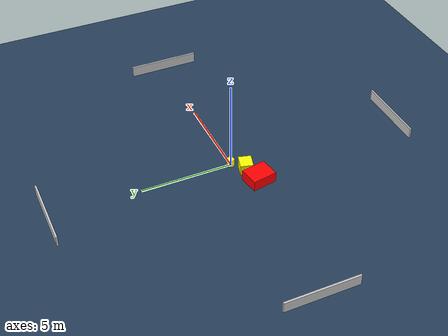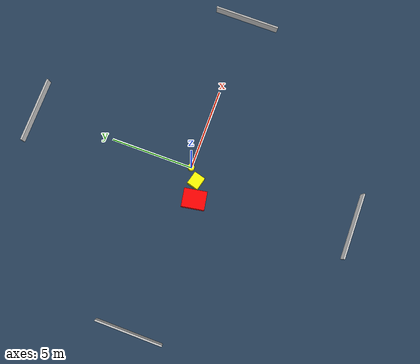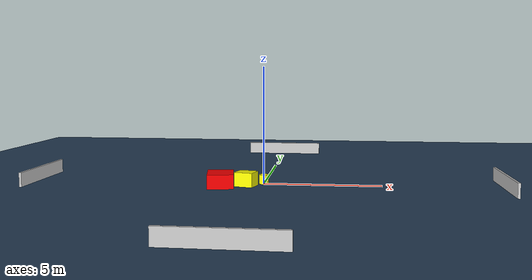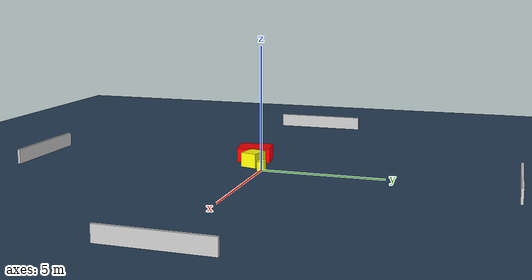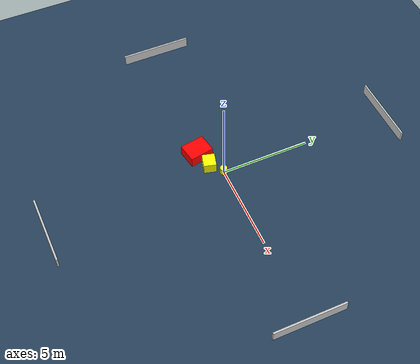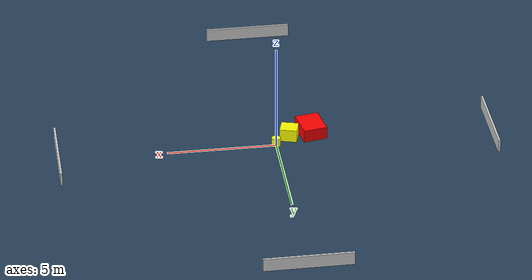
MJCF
<?xml version="1.0" ?>
<mujoco model="generated_environment">
  <option timestep="0.01" integrator="RK4" cone="elliptic"/>
  <default>
    <geom density="1"/>
  </default>
  <asset>
    <texture builtin="gradient" height="3072" name="skybox" rgb1="0.3 0.5 0.7" rgb2="0 0 0" type="skybox" width="512"/>
    <texture builtin="checker" height="300" name="groundplane" rgb1="0.2 0.3 0.4" rgb2="0.1 0.2 0.3" type="2d" width="300"/>
    <material name="groundplane" reflectance="0.2" texrepeat="5 5" texture="groundplane"/>
  </asset>
  <worldbody>
    <light dir="0 0 -1" directional="true" pos="0 0 1.5"/>
    <geom condim="3" friction="0.5 0.005 0.001" material="groundplane" name="floor" pos="0 0 0" size="0 0 0.05" type="plane"/>
    <body name="walls">
      <geom name="wall_1" condim="4" pos="-10.0 0.0 0.3" rgba="0.800000011920929 0.800000011920929 0.800000011920929 1.0" size="0.05 2.0 0.3" type="box"/>
      <geom name="wall_2" condim="4" pos="10.0 0.0 0.3" rgba="0.800000011920929 0.800000011920929 0.800000011920929 1.0" size="0.05 2.0 0.3" type="box"/>
      <geom name="wall_3" condim="4" pos="0.0 -10.0 0.3" rgba="0.800000011920929 0.800000011920929 0.800000011920929 1.0" size="2.0 0.05 0.3" type="box"/>
      <geom name="wall_4" condim="4" pos="0.0 10.0 0.3" rgba="0.800000011920929 0.800000011920929 0.800000011920929 1.0" size="2.0 0.05 0.3" type="box"/>
    </body>
    <body name="robot">
      <joint name="joint_x" type="slide" pos="0 0 0" axis="1 0 0"/>
      <joint name="joint_y" type="slide" pos="0 0 0" axis="0 1 0"/>
      <geom name="robot" type="cylinder" pos="0.0 0.0 0.2" size="0.2 0.2 0.0" mass="5.0" friction="1.0 0.005 0.0001" condim="4" rgba="1.0 1.0 0.0 1.0"/>
    </body>
    <body name="obstacle_1_movable">
      <geom name="obstacle_1_movable" condim="4" pos="-0.6842087900585404 -0.5626669497794948 0.3" euler="0 0 74.97766627249956" friction="0.0 0.005 0.001" rgba="1.0 1.0 0.0 1.0" size="0.3495989638729071 0.3974769209354553 0.3" type="box" mass="0.1"/>
      <joint type="free"/>
    </body>
    <body name="obstacle_2_static">
      <geom name="obstacle_2_static" condim="4" pos="-1.7343292912613135 -0.8343625591034812 0.3" euler="0 0 9.851332829444313" friction="0.0 0.005 0.001" rgba="1.0 0.0 0.0 1.0" size="0.5498699371780377 0.6865926907986288 0.3" type="box"/>
    </body>
  </worldbody>
  <actuator>
    <motor name="actuator_x" joint="joint_x" gear="1" ctrlrange="-1 1"/>
    <motor name="actuator_y" joint="joint_y" gear="1" ctrlrange="-1 1"/>
  </actuator>
</mujoco>
